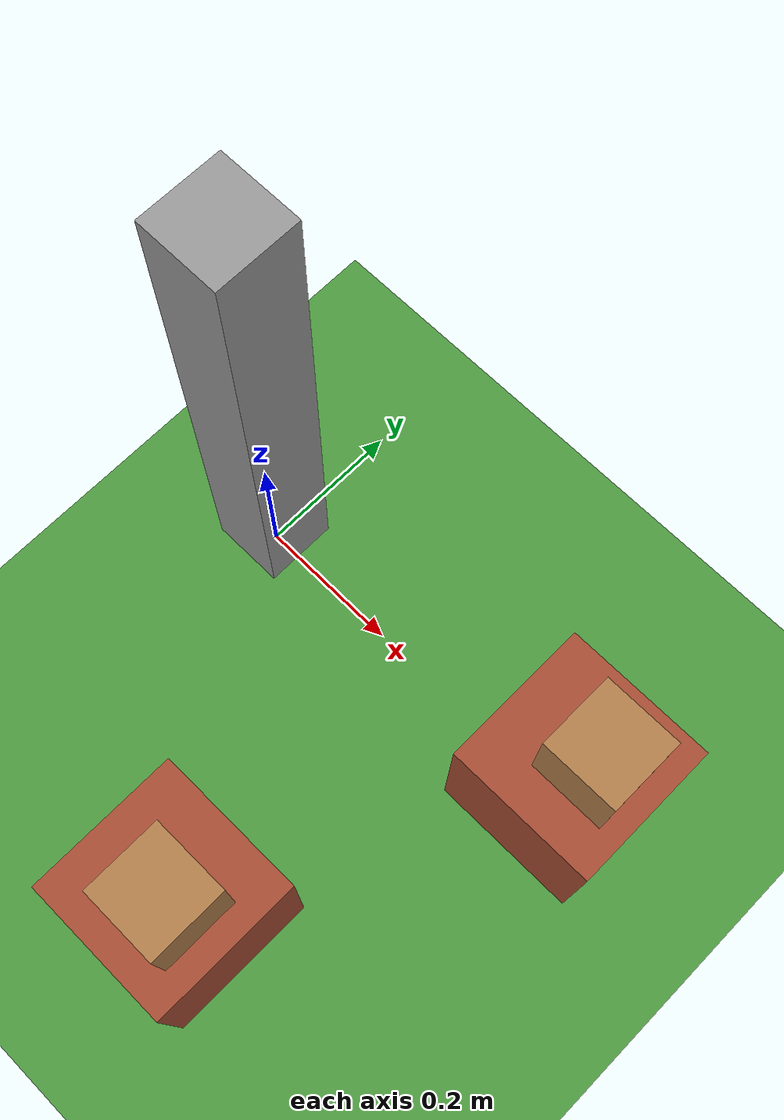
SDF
<sdf version="1.7">
 <world name="default">
  <model name="ground_plane">
   <static>1</static>
   <link name="link">
    <collision name="collision">
     <geometry><plane><normal>0 0 1</normal><size>100 100</size></plane></geometry>
     <surface>
      <contact><collide_bitmask>65535</collide_bitmask></contact>
      <friction><ode><mu>100</mu><mu2>50</mu2></ode></friction>
     </surface>
    </collision>
    <visual name="visual">
     <cast_shadows>0</cast_shadows>
     <geometry><plane><normal>0 0 1</normal><size>100 100</size></plane></geometry>
     <material>
      <script><uri>file://media/materials/scripts/gazebo.material</uri><name>Gazebo/Grey</name></script>
     </material>
    </visual>
   </link>
  </model>
  <light name="sun" type="directional">
   <pose>0 0 10 0 -0 0</pose>
   <diffuse>0.8 0.8 0.8 1</diffuse>
   <specular>0.2 0.2 0.2 1</specular>
   <attenuation>
    <range>1000</range>
    <constant>0.9</constant>
    <linear>0.01</linear>
    <quadratic>0.001</quadratic>
   </attenuation>
   <direction>-0.5 0.1 -0.9</direction>
   <spot><inner_angle>0</inner_angle><outer_angle>0</outer_angle><falloff>0</falloff></spot>
  </light>
  <gravity>0 0 -9.8</gravity>
  <magnetic_field>6e-06 2.3e-05 -4.2e-05</magnetic_field>
  <atmosphere type="adiabatic"/>
  <physics type="ode">
   <max_step_size>0.001</max_step_size>
   <real_time_factor>1</real_time_factor>
   <real_time_update_rate>1000</real_time_update_rate>
  </physics>
  <scene><ambient>0.4 0.4 0.4 1</ambient><background>0.7 0.7 0.7 1</background><shadows>1</shadows></scene>
  <spherical_coordinates>
   <surface_model>EARTH_WGS84</surface_model>
   <latitude_deg>0</latitude_deg>
   <longitude_deg>0</longitude_deg>
   <elevation>0</elevation>
   <heading_deg>0</heading_deg>
  </spherical_coordinates>
  <model name="piso">
   <link name="link">
    <inertial>
     <mass>1</mass>
     <inertia>
      <ixx>0.166667</ixx>
      <ixy>0</ixy>
      <ixz>0</ixz>
      <iyy>0.166667</iyy>
      <iyz>0</iyz>
      <izz>0.166667</izz>
     </inertia>
    </inertial>
    <pose>-0 0 -0.522366 0 -0 0</pose>
    <visual name="visual">
     <geometry><box><size>3 3 0.1</size></box></geometry>
     <material>
      <script><name>Gazebo/Grass</name><uri>file://media/materials/scripts/gazebo.material</uri></script>
      <shader type="pixel"><normal_map>__default__</normal_map></shader>
      <ambient>0.3 0.3 0.3 1</ambient>
      <diffuse>0.7 0.7 0.7 1</diffuse>
      <specular>0.01 0.01 0.01 1</specular>
      <emissive>0 0 0 1</emissive>
     </material>
    </visual>
    <collision name="collision">
     <geometry><box><size>3 3 0.1</size></box></geometry>
     <surface>
      <friction>
       <ode><mu>1</mu><mu2>1</mu2><fdir1>0 0 0</fdir1><slip1>0</slip1><slip2>0</slip2></ode>
       <torsional>
        <coefficient>1</coefficient>
        <patch_radius>0</patch_radius>
        <surface_radius>0</surface_radius>
        <use_patch_radius>1</use_patch_radius>
        <ode><slip>0</slip></ode>
       </torsional>
      </friction>
      <bounce><restitution_coefficient>0</restitution_coefficient><threshold>1e+06</threshold></bounce>
      <contact>
       <collide_without_contact>0</collide_without_contact>
       <collide_without_contact_bitmask>1</collide_without_contact_bitmask>
       <collide_bitmask>1</collide_bitmask>
       <ode>
        <soft_cfm>0</soft_cfm>
        <soft_erp>0.2</soft_erp>
        <kp>1e+13</kp>
        <kd>1</kd>
        <max_vel>0.01</max_vel>
        <min_depth>0</min_depth>
       </ode>
       <bullet>
        <split_impulse>1</split_impulse>
        <split_impulse_penetration_threshold>-0.01</split_impulse_penetration_threshold>
        <soft_cfm>0</soft_cfm>
        <soft_erp>0.2</soft_erp>
        <kp>1e+13</kp>
        <kd>1</kd>
       </bullet>
      </contact>
     </surface>
    </collision>
   </link>
   <static>1</static>
   <pose>0.032702 -0.079005 0.5 0 -0 0</pose>
  </model>
  <model name="baseBrazo">
   <link name="link">
    <inertial>
     <mass>1</mass>
     <inertia>
      <ixx>0.166667</ixx>
      <ixy>0</ixy>
      <ixz>0</ixz>
      <iyy>0.166667</iyy>
      <iyz>0</iyz>
      <izz>0.166667</izz>
     </inertia>
    </inertial>
    <visual name="visual">
     <geometry><box><size>0.1 0.1 0.7</size></box></geometry>
     <material>
      <script><name>Gazebo/Grey</name><uri>file://media/materials/scripts/gazebo.material</uri></script>
      <shader type="pixel"><normal_map>__default__</normal_map></shader>
      <ambient>0.3 0.3 0.3 1</ambient>
      <diffuse>0.7 0.7 0.7 1</diffuse>
      <specular>0.01 0.01 0.01 1</specular>
      <emissive>0 0 0 1</emissive>
     </material>
    </visual>
    <collision name="collision">
     <geometry><box><size>0.1 0.1 0.7</size></box></geometry>
     <surface>
      <friction>
       <ode><mu>1</mu><mu2>1</mu2><fdir1>0 0 0</fdir1><slip1>0</slip1><slip2>0</slip2></ode>
       <torsional>
        <coefficient>1</coefficient>
        <patch_radius>0</patch_radius>
        <surface_radius>0</surface_radius>
        <use_patch_radius>1</use_patch_radius>
        <ode><slip>0</slip></ode>
       </torsional>
      </friction>
      <bounce><restitution_coefficient>0</restitution_coefficient><threshold>1e+06</threshold></bounce>
      <contact>
       <collide_without_contact>0</collide_without_contact>
       <collide_without_contact_bitmask>1</collide_without_contact_bitmask>
       <collide_bitmask>1</collide_bitmask>
       <ode>
        <soft_cfm>0</soft_cfm>
        <soft_erp>0.2</soft_erp>
        <kp>1e+13</kp>
        <kd>1</kd>
        <max_vel>0.01</max_vel>
        <min_depth>0</min_depth>
       </ode>
       <bullet>
        <split_impulse>1</split_impulse>
        <split_impulse_penetration_threshold>-0.01</split_impulse_penetration_threshold>
        <soft_cfm>0</soft_cfm>
        <soft_erp>0.2</soft_erp>
        <kp>1e+13</kp>
        <kd>1</kd>
       </bullet>
      </contact>
     </surface>
    </collision>
   </link>
   <static>1</static>
   <pose>0 0 0.35 0 -0 0</pose>
  </model>
  <model name="cajitaEmpuje">
   <link name="link">
    <inertial>
     <mass>1</mass>
     <inertia>
      <ixx>0.166667</ixx>
      <ixy>0</ixy>
      <ixz>0</ixz>
      <iyy>0.166667</iyy>
      <iyz>0</iyz>
      <izz>0.166667</izz>
     </inertia>
    </inertial>
    <visual name="visual">
     <geometry><box><size>0.1 0.1 0.1</size></box></geometry>
     <material>
      <script><name>Gazebo/Wood</name><uri>file://media/materials/scripts/gazebo.material</uri></script>
      <shader type="pixel"><normal_map>__default__</normal_map></shader>
      <ambient>1 1 1 1</ambient>
      <diffuse>1 1 1 1</diffuse>
      <specular>0.2 0.2 0.2 1</specular>
      <emissive>0 0 0 1</emissive>
     </material>
    </visual>
    <collision name="collision">
     <geometry><box><size>0.1 0.1 0.1</size></box></geometry>
     <surface>
      <friction>
       <ode><mu>1</mu><mu2>1</mu2><fdir1>0 0 0</fdir1><slip1>0</slip1><slip2>0</slip2></ode>
       <torsional>
        <coefficient>1</coefficient>
        <patch_radius>0</patch_radius>
        <surface_radius>0</surface_radius>
        <use_patch_radius>1</use_patch_radius>
        <ode><slip>0</slip></ode>
       </torsional>
      </friction>
      <bounce><restitution_coefficient>0</restitution_coefficient><threshold>1e+06</threshold></bounce>
      <contact>
       <collide_without_contact>0</collide_without_contact>
       <collide_without_contact_bitmask>1</collide_without_contact_bitmask>
       <collide_bitmask>1</collide_bitmask>
       <ode>
        <soft_cfm>0</soft_cfm>
        <soft_erp>0.2</soft_erp>
        <kp>1e+13</kp>
        <kd>1</kd>
        <max_vel>0.01</max_vel>
        <min_depth>0</min_depth>
       </ode>
       <bullet>
        <split_impulse>1</split_impulse>
        <split_impulse_penetration_threshold>-0.01</split_impulse_penetration_threshold>
        <soft_cfm>0</soft_cfm>
        <soft_erp>0.2</soft_erp>
        <kp>1e+13</kp>
        <kd>1</kd>
       </bullet>
      </contact>
     </surface>
    </collision>
   </link>
   <static>0</static>
   <pose>0.304412 -0.428259 0.292382 0 -0 0</pose>
  </model>
  <model name="cajitaEmpuje_clone">
   <link name="link">
    <inertial>
     <mass>1</mass>
     <inertia>
      <ixx>0.166667</ixx>
      <ixy>0</ixy>
      <ixz>0</ixz>
      <iyy>0.166667</iyy>
      <iyz>0</iyz>
      <izz>0.166667</izz>
     </inertia>
    </inertial>
    <visual name="visual">
     <geometry><box><size>0.1 0.1 0.1</size></box></geometry>
     <material>
      <script><name>Gazebo/Wood</name><uri>file://media/materials/scripts/gazebo.material</uri></script>
      <shader type="pixel"><normal_map>__default__</normal_map></shader>
      <ambient>1 1 1 1</ambient>
      <diffuse>1 1 1 1</diffuse>
      <specular>0.2 0.2 0.2 1</specular>
      <emissive>0 0 0 1</emissive>
     </material>
    </visual>
    <collision name="collision">
     <geometry><box><size>0.1 0.1 0.1</size></box></geometry>
     <surface>
      <friction>
       <ode><mu>1</mu><mu2>1</mu2><fdir1>0 0 0</fdir1><slip1>0</slip1><slip2>0</slip2></ode>
       <torsional>
        <coefficient>1</coefficient>
        <patch_radius>0</patch_radius>
        <surface_radius>0</surface_radius>
        <use_patch_radius>1</use_patch_radius>
        <ode><slip>0</slip></ode>
       </torsional>
      </friction>
      <bounce><restitution_coefficient>0</restitution_coefficient><threshold>1e+06</threshold></bounce>
      <contact>
       <collide_without_contact>0</collide_without_contact>
       <collide_without_contact_bitmask>1</collide_without_contact_bitmask>
       <collide_bitmask>1</collide_bitmask>
       <ode>
        <soft_cfm>0</soft_cfm>
        <soft_erp>0.2</soft_erp>
        <kp>1e+13</kp>
        <kd>1</kd>
        <max_vel>0.01</max_vel>
        <min_depth>0</min_depth>
       </ode>
       <bullet>
        <split_impulse>1</split_impulse>
        <split_impulse_penetration_threshold>-0.01</split_impulse_penetration_threshold>
        <soft_cfm>0</soft_cfm>
        <soft_erp>0.2</soft_erp>
        <kp>1e+13</kp>
        <kd>1</kd>
       </bullet>
      </contact>
     </surface>
    </collision>
   </link>
   <static>0</static>
   <pose>0.525845 0.002482 0.292578 0 -0 0</pose>
  </model>
  <model name="baseCajitas">
   <link name="link">
    <inertial>
     <mass>1</mass>
     <inertia>
      <ixx>0.166667</ixx>
      <ixy>0</ixy>
      <ixz>0</ixz>
      <iyy>0.166667</iyy>
      <iyz>0</iyz>
      <izz>0.166667</izz>
     </inertia>
    </inertial>
    <pose>-0 0 -0.364818 0 -0 0</pose>
    <visual name="visual">
     <geometry><box><size>0.2 0.2 0.2</size></box></geometry>
     <material>
      <script><name>Gazebo/Bricks</name><uri>file://media/materials/scripts/gazebo.material</uri></script>
      <shader type="pixel"><normal_map>__default__</normal_map></shader>
      <ambient>0.3 0.3 0.3 1</ambient>
      <diffuse>0.7 0.7 0.7 1</diffuse>
      <specular>0.01 0.01 0.01 1</specular>
      <emissive>0 0 0 1</emissive>
     </material>
    </visual>
    <collision name="collision">
     <geometry><box><size>0.2 0.2 0.2</size></box></geometry>
     <surface>
      <friction>
       <ode><mu>1</mu><mu2>1</mu2><fdir1>0 0 0</fdir1><slip1>0</slip1><slip2>0</slip2></ode>
       <torsional>
        <coefficient>1</coefficient>
        <patch_radius>0</patch_radius>
        <surface_radius>0</surface_radius>
        <use_patch_radius>1</use_patch_radius>
        <ode><slip>0</slip></ode>
       </torsional>
      </friction>
      <bounce><restitution_coefficient>0</restitution_coefficient><threshold>1e+06</threshold></bounce>
      <contact>
       <collide_without_contact>0</collide_without_contact>
       <collide_without_contact_bitmask>1</collide_without_contact_bitmask>
       <collide_bitmask>1</collide_bitmask>
       <ode>
        <soft_cfm>0</soft_cfm>
        <soft_erp>0.2</soft_erp>
        <kp>1e+13</kp>
        <kd>1</kd>
        <max_vel>0.01</max_vel>
        <min_depth>0</min_depth>
       </ode>
       <bullet>
        <split_impulse>1</split_impulse>
        <split_impulse_penetration_threshold>-0.01</split_impulse_penetration_threshold>
        <soft_cfm>0</soft_cfm>
        <soft_erp>0.2</soft_erp>
        <kp>1e+13</kp>
        <kd>1</kd>
       </bullet>
      </contact>
     </surface>
    </collision>
   </link>
   <static>0</static>
   <pose>0.504971 0.004136 0.492452 1e-06 3e-06 -0</pose>
  </model>
  <model name="baseCajitas_clone">
   <link name="link">
    <inertial>
     <mass>1</mass>
     <inertia>
      <ixx>0.166667</ixx>
      <ixy>0</ixy>
      <ixz>0</ixz>
      <iyy>0.166667</iyy>
      <iyz>0</iyz>
      <izz>0.166667</izz>
     </inertia>
    </inertial>
    <pose>-0 0 -0.364818 0 -0 0</pose>
    <visual name="visual">
     <geometry><box><size>0.2 0.2 0.2</size></box></geometry>
     <material>
      <script><name>Gazebo/Bricks</name><uri>file://media/materials/scripts/gazebo.material</uri></script>
      <shader type="pixel"><normal_map>__default__</normal_map></shader>
      <ambient>0.3 0.3 0.3 1</ambient>
      <diffuse>0.7 0.7 0.7 1</diffuse>
      <specular>0.01 0.01 0.01 1</specular>
      <emissive>0 0 0 1</emissive>
     </material>
    </visual>
    <collision name="collision">
     <geometry><box><size>0.2 0.2 0.2</size></box></geometry>
     <surface>
      <friction>
       <ode><mu>1</mu><mu2>1</mu2><fdir1>0 0 0</fdir1><slip1>0</slip1><slip2>0</slip2></ode>
       <torsional>
        <coefficient>1</coefficient>
        <patch_radius>0</patch_radius>
        <surface_radius>0</surface_radius>
        <use_patch_radius>1</use_patch_radius>
        <ode><slip>0</slip></ode>
       </torsional>
      </friction>
      <bounce><restitution_coefficient>0</restitution_coefficient><threshold>1e+06</threshold></bounce>
      <contact>
       <collide_without_contact>0</collide_without_contact>
       <collide_without_contact_bitmask>1</collide_without_contact_bitmask>
       <collide_bitmask>1</collide_bitmask>
       <ode>
        <soft_cfm>0</soft_cfm>
        <soft_erp>0.2</soft_erp>
        <kp>1e+13</kp>
        <kd>1</kd>
        <max_vel>0.01</max_vel>
        <min_depth>0</min_depth>
       </ode>
       <bullet>
        <split_impulse>1</split_impulse>
        <split_impulse_penetration_threshold>-0.01</split_impulse_penetration_threshold>
        <soft_cfm>0</soft_cfm>
        <soft_erp>0.2</soft_erp>
        <kp>1e+13</kp>
        <kd>1</kd>
       </bullet>
      </contact>
     </surface>
    </collision>
   </link>
   <static>0</static>
   <pose>0.284455 -0.421581 0.492452 1e-06 3e-06 -0</pose>
  </model>
 </world>
</sdf>
